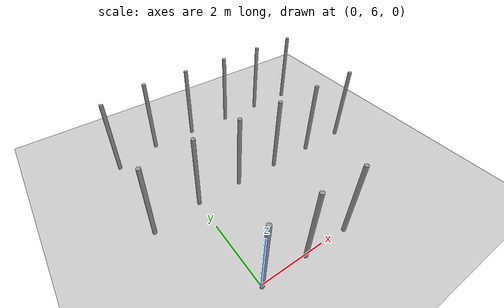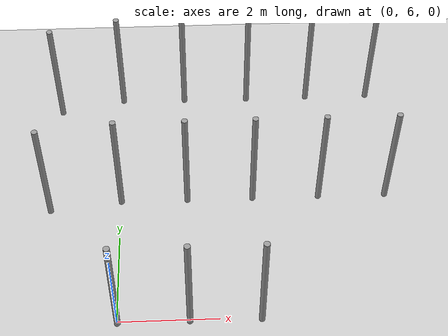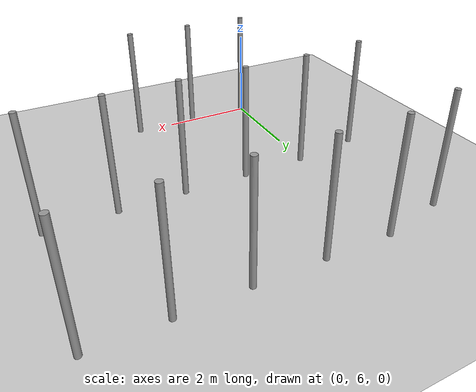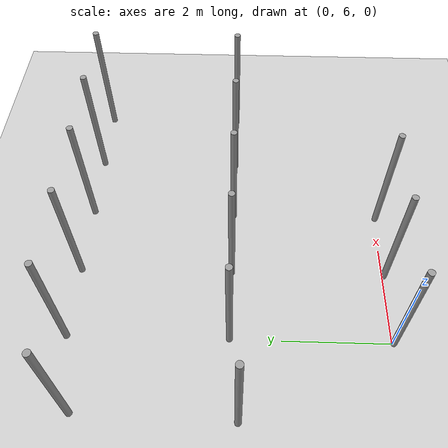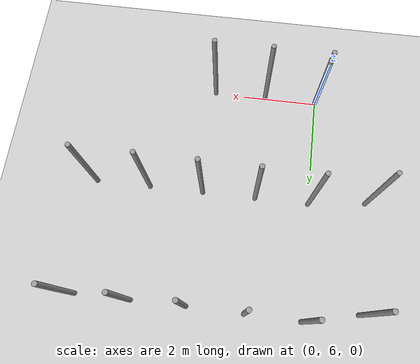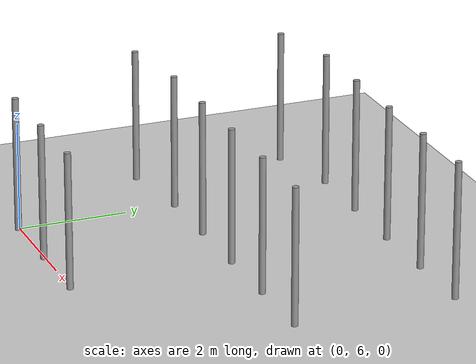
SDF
<sdf version="1.6">
 <world name="default">
  <model name="ground_plane">
   <static>1</static>
   <link name="link">
    <collision name="collision">
     <geometry><plane><normal>0 0 1</normal><size>100 100</size></plane></geometry>
     <surface><friction><ode><mu>100</mu><mu2>50</mu2></ode></friction></surface>
    </collision>
    <visual name="visual">
     <cast_shadows>0</cast_shadows>
     <geometry><plane><normal>0 0 1</normal><size>100 100</size></plane></geometry>
     <material>
      <script><uri>file://media/materials/scripts/gazebo.material</uri><name>Gazebo/Grey</name></script>
     </material>
    </visual>
   </link>
  </model>
  <model name="pole">
   <link name="link_0">
    <inertial>
     <mass>0.0364582</mass>
     <inertia>
      <ixx>0.00312124</ixx>
      <ixy>0</ixy>
      <ixz>0</ixz>
      <iyy>0.00312124</iyy>
      <iyz>0</iyz>
      <izz>0.00016615</izz>
     </inertia>
    </inertial>
    <visual name="visual">
     <geometry><cylinder><radius>0.06</radius><length>2.5</length></cylinder></geometry>
     <material>
      <lighting>1</lighting>
      <script><uri>file://media/materials/scripts/gazebo.material</uri><name>Gazebo/Grey</name></script>
      <ambient>0.3 0.3 0.3 1</ambient>
      <diffuse>0.7 0.7 0.7 1</diffuse>
      <specular>0.01 0.01 0.01 1</specular>
      <emissive>0 0 0 1</emissive>
      <shader type="vertex"><normal_map>__default__</normal_map></shader>
     </material>
    </visual>
    <collision name="collision">
     <geometry><cylinder><radius>0.06</radius><length>2.5</length></cylinder></geometry>
     <surface>
      <friction>
       <ode><mu>1</mu><mu2>1</mu2><fdir1>0 0 0</fdir1><slip1>0</slip1><slip2>0</slip2></ode>
       <torsional>
        <coefficient>1</coefficient>
        <patch_radius>0</patch_radius>
        <surface_radius>0</surface_radius>
        <use_patch_radius>1</use_patch_radius>
        <ode><slip>0</slip></ode>
       </torsional>
      </friction>
      <bounce><restitution_coefficient>0</restitution_coefficient><threshold>1e+06</threshold></bounce>
      <contact>
       <collide_without_contact>0</collide_without_contact>
       <collide_without_contact_bitmask>1</collide_without_contact_bitmask>
       <collide_bitmask>1</collide_bitmask>
       <ode>
        <soft_cfm>0</soft_cfm>
        <soft_erp>0.2</soft_erp>
        <kp>1e+13</kp>
        <kd>1</kd>
        <max_vel>0.01</max_vel>
        <min_depth>0</min_depth>
       </ode>
       <bullet>
        <split_impulse>1</split_impulse>
        <split_impulse_penetration_threshold>-0.01</split_impulse_penetration_threshold>
        <soft_cfm>0</soft_cfm>
        <soft_erp>0.2</soft_erp>
        <kp>1e+13</kp>
        <kd>1</kd>
       </bullet>
      </contact>
     </surface>
    </collision>
   </link>
   <static>0</static>
   <pose>0.007323 5.96573 1.25 0 0 -0.064661</pose>
  </model>
  <model name="pole_0">
   <link name="link_0">
    <inertial>
     <mass>0.0364582</mass>
     <inertia>
      <ixx>0.00312124</ixx>
      <ixy>0</ixy>
      <ixz>0</ixz>
      <iyy>0.00312124</iyy>
      <iyz>0</iyz>
      <izz>0.00016615</izz>
     </inertia>
    </inertial>
    <visual name="visual">
     <geometry><cylinder><radius>0.06</radius><length>2.5</length></cylinder></geometry>
     <material>
      <lighting>1</lighting>
      <script><uri>file://media/materials/scripts/gazebo.material</uri><name>Gazebo/Grey</name></script>
      <ambient>0.3 0.3 0.3 1</ambient>
      <diffuse>0.7 0.7 0.7 1</diffuse>
      <specular>0.01 0.01 0.01 1</specular>
      <emissive>0 0 0 1</emissive>
      <shader type="vertex"><normal_map>__default__</normal_map></shader>
     </material>
    </visual>
    <collision name="collision">
     <geometry><cylinder><radius>0.06</radius><length>2.5</length></cylinder></geometry>
     <surface>
      <friction>
       <ode><mu>1</mu><mu2>1</mu2><fdir1>0 0 0</fdir1><slip1>0</slip1><slip2>0</slip2></ode>
       <torsional>
        <coefficient>1</coefficient>
        <patch_radius>0</patch_radius>
        <surface_radius>0</surface_radius>
        <use_patch_radius>1</use_patch_radius>
        <ode><slip>0</slip></ode>
       </torsional>
      </friction>
      <bounce><restitution_coefficient>0</restitution_coefficient><threshold>1e+06</threshold></bounce>
      <contact>
       <collide_without_contact>0</collide_without_contact>
       <collide_without_contact_bitmask>1</collide_without_contact_bitmask>
       <collide_bitmask>1</collide_bitmask>
       <ode>
        <soft_cfm>0</soft_cfm>
        <soft_erp>0.2</soft_erp>
        <kp>1e+13</kp>
        <kd>1</kd>
        <max_vel>0.01</max_vel>
        <min_depth>0</min_depth>
       </ode>
       <bullet>
        <split_impulse>1</split_impulse>
        <split_impulse_penetration_threshold>-0.01</split_impulse_penetration_threshold>
        <soft_cfm>0</soft_cfm>
        <soft_erp>0.2</soft_erp>
        <kp>1e+13</kp>
        <kd>1</kd>
       </bullet>
      </contact>
     </surface>
    </collision>
   </link>
   <static>0</static>
   <pose>0.014095 8.94529 1.24999 -1e-06 1e-06 -0.063703</pose>
  </model>
  <model name="pole_1">
   <link name="link_0">
    <inertial>
     <mass>0.0364582</mass>
     <inertia>
      <ixx>0.00312124</ixx>
      <ixy>0</ixy>
      <ixz>0</ixz>
      <iyy>0.00312124</iyy>
      <iyz>0</iyz>
      <izz>0.00016615</izz>
     </inertia>
    </inertial>
    <visual name="visual">
     <geometry><cylinder><radius>0.06</radius><length>2.5</length></cylinder></geometry>
     <material>
      <lighting>1</lighting>
      <script><uri>file://media/materials/scripts/gazebo.material</uri><name>Gazebo/Grey</name></script>
      <ambient>0.3 0.3 0.3 1</ambient>
      <diffuse>0.7 0.7 0.7 1</diffuse>
      <specular>0.01 0.01 0.01 1</specular>
      <emissive>0 0 0 1</emissive>
      <shader type="vertex"><normal_map>__default__</normal_map></shader>
     </material>
    </visual>
    <collision name="collision">
     <geometry><cylinder><radius>0.06</radius><length>2.5</length></cylinder></geometry>
     <surface>
      <friction>
       <ode><mu>1</mu><mu2>1</mu2><fdir1>0 0 0</fdir1><slip1>0</slip1><slip2>0</slip2></ode>
       <torsional>
        <coefficient>1</coefficient>
        <patch_radius>0</patch_radius>
        <surface_radius>0</surface_radius>
        <use_patch_radius>1</use_patch_radius>
        <ode><slip>0</slip></ode>
       </torsional>
      </friction>
      <bounce><restitution_coefficient>0</restitution_coefficient><threshold>1e+06</threshold></bounce>
      <contact>
       <collide_without_contact>0</collide_without_contact>
       <collide_without_contact_bitmask>1</collide_without_contact_bitmask>
       <collide_bitmask>1</collide_bitmask>
       <ode>
        <soft_cfm>0</soft_cfm>
        <soft_erp>0.2</soft_erp>
        <kp>1e+13</kp>
        <kd>1</kd>
        <max_vel>0.01</max_vel>
        <min_depth>0</min_depth>
       </ode>
       <bullet>
        <split_impulse>1</split_impulse>
        <split_impulse_penetration_threshold>-0.01</split_impulse_penetration_threshold>
        <soft_cfm>0</soft_cfm>
        <soft_erp>0.2</soft_erp>
        <kp>1e+13</kp>
        <kd>1</kd>
       </bullet>
      </contact>
     </surface>
    </collision>
   </link>
   <static>0</static>
   <pose>-0.007473 11.9254 1.25 -1e-06 -1e-06 -0.068552</pose>
  </model>
  <model name="pole_12">
   <link name="link_0">
    <inertial>
     <mass>0.0364582</mass>
     <inertia>
      <ixx>0.00312124</ixx>
      <ixy>0</ixy>
      <ixz>0</ixz>
      <iyy>0.00312124</iyy>
      <iyz>0</iyz>
      <izz>0.00016615</izz>
     </inertia>
    </inertial>
    <visual name="visual">
     <geometry><cylinder><radius>0.06</radius><length>2.5</length></cylinder></geometry>
     <material>
      <lighting>1</lighting>
      <script><uri>file://media/materials/scripts/gazebo.material</uri><name>Gazebo/Grey</name></script>
      <ambient>0.3 0.3 0.3 1</ambient>
      <diffuse>0.7 0.7 0.7 1</diffuse>
      <specular>0.01 0.01 0.01 1</specular>
      <emissive>0 0 0 1</emissive>
      <shader type="vertex"><normal_map>__default__</normal_map></shader>
     </material>
    </visual>
    <collision name="collision">
     <geometry><cylinder><radius>0.06</radius><length>2.5</length></cylinder></geometry>
     <surface>
      <friction>
       <ode><mu>1</mu><mu2>1</mu2><fdir1>0 0 0</fdir1><slip1>0</slip1><slip2>0</slip2></ode>
       <torsional>
        <coefficient>1</coefficient>
        <patch_radius>0</patch_radius>
        <surface_radius>0</surface_radius>
        <use_patch_radius>1</use_patch_radius>
        <ode><slip>0</slip></ode>
       </torsional>
      </friction>
      <bounce><restitution_coefficient>0</restitution_coefficient><threshold>1e+06</threshold></bounce>
      <contact>
       <collide_without_contact>0</collide_without_contact>
       <collide_without_contact_bitmask>1</collide_without_contact_bitmask>
       <collide_bitmask>1</collide_bitmask>
       <ode>
        <soft_cfm>0</soft_cfm>
        <soft_erp>0.2</soft_erp>
        <kp>1e+13</kp>
        <kd>1</kd>
        <max_vel>0.01</max_vel>
        <min_depth>0</min_depth>
       </ode>
       <bullet>
        <split_impulse>1</split_impulse>
        <split_impulse_penetration_threshold>-0.01</split_impulse_penetration_threshold>
        <soft_cfm>0</soft_cfm>
        <soft_erp>0.2</soft_erp>
        <kp>1e+13</kp>
        <kd>1</kd>
       </bullet>
      </contact>
     </surface>
    </collision>
   </link>
   <static>0</static>
   <pose>1.41422 5.96533 1.25 -1e-06 1e-06 -0.057631</pose>
  </model>
  <model name="pole_13">
   <link name="link_0">
    <inertial>
     <mass>0.0364582</mass>
     <inertia>
      <ixx>0.00312124</ixx>
      <ixy>0</ixy>
      <ixz>0</ixz>
      <iyy>0.00312124</iyy>
      <iyz>0</iyz>
      <izz>0.00016615</izz>
     </inertia>
    </inertial>
    <visual name="visual">
     <geometry><cylinder><radius>0.06</radius><length>2.5</length></cylinder></geometry>
     <material>
      <lighting>1</lighting>
      <script><uri>file://media/materials/scripts/gazebo.material</uri><name>Gazebo/Grey</name></script>
      <ambient>0.3 0.3 0.3 1</ambient>
      <diffuse>0.7 0.7 0.7 1</diffuse>
      <specular>0.01 0.01 0.01 1</specular>
      <emissive>0 0 0 1</emissive>
      <shader type="vertex"><normal_map>__default__</normal_map></shader>
     </material>
    </visual>
    <collision name="collision">
     <geometry><cylinder><radius>0.06</radius><length>2.5</length></cylinder></geometry>
     <surface>
      <friction>
       <ode><mu>1</mu><mu2>1</mu2><fdir1>0 0 0</fdir1><slip1>0</slip1><slip2>0</slip2></ode>
       <torsional>
        <coefficient>1</coefficient>
        <patch_radius>0</patch_radius>
        <surface_radius>0</surface_radius>
        <use_patch_radius>1</use_patch_radius>
        <ode><slip>0</slip></ode>
       </torsional>
      </friction>
      <bounce><restitution_coefficient>0</restitution_coefficient><threshold>1e+06</threshold></bounce>
      <contact>
       <collide_without_contact>0</collide_without_contact>
       <collide_without_contact_bitmask>1</collide_without_contact_bitmask>
       <collide_bitmask>1</collide_bitmask>
       <ode>
        <soft_cfm>0</soft_cfm>
        <soft_erp>0.2</soft_erp>
        <kp>1e+13</kp>
        <kd>1</kd>
        <max_vel>0.01</max_vel>
        <min_depth>0</min_depth>
       </ode>
       <bullet>
        <split_impulse>1</split_impulse>
        <split_impulse_penetration_threshold>-0.01</split_impulse_penetration_threshold>
        <soft_cfm>0</soft_cfm>
        <soft_erp>0.2</soft_erp>
        <kp>1e+13</kp>
        <kd>1</kd>
       </bullet>
      </contact>
     </surface>
    </collision>
   </link>
   <static>0</static>
   <pose>2.80863 5.96537 1.24999 0 -1e-06 -0.058721</pose>
  </model>
  <model name="pole_16">
   <link name="link_0">
    <inertial>
     <mass>0.0364582</mass>
     <inertia>
      <ixx>0.00312124</ixx>
      <ixy>0</ixy>
      <ixz>0</ixz>
      <iyy>0.00312124</iyy>
      <iyz>0</iyz>
      <izz>0.00016615</izz>
     </inertia>
    </inertial>
    <visual name="visual">
     <geometry><cylinder><radius>0.06</radius><length>2.5</length></cylinder></geometry>
     <material>
      <lighting>1</lighting>
      <script><uri>file://media/materials/scripts/gazebo.material</uri><name>Gazebo/Grey</name></script>
      <ambient>0.3 0.3 0.3 1</ambient>
      <diffuse>0.7 0.7 0.7 1</diffuse>
      <specular>0.01 0.01 0.01 1</specular>
      <emissive>0 0 0 1</emissive>
      <shader type="vertex"><normal_map>__default__</normal_map></shader>
     </material>
    </visual>
    <collision name="collision">
     <geometry><cylinder><radius>0.06</radius><length>2.5</length></cylinder></geometry>
     <surface>
      <friction>
       <ode><mu>1</mu><mu2>1</mu2><fdir1>0 0 0</fdir1><slip1>0</slip1><slip2>0</slip2></ode>
       <torsional>
        <coefficient>1</coefficient>
        <patch_radius>0</patch_radius>
        <surface_radius>0</surface_radius>
        <use_patch_radius>1</use_patch_radius>
        <ode><slip>0</slip></ode>
       </torsional>
      </friction>
      <bounce><restitution_coefficient>0</restitution_coefficient><threshold>1e+06</threshold></bounce>
      <contact>
       <collide_without_contact>0</collide_without_contact>
       <collide_without_contact_bitmask>1</collide_without_contact_bitmask>
       <collide_bitmask>1</collide_bitmask>
       <ode>
        <soft_cfm>0</soft_cfm>
        <soft_erp>0.2</soft_erp>
        <kp>1e+13</kp>
        <kd>1</kd>
        <max_vel>0.01</max_vel>
        <min_depth>0</min_depth>
       </ode>
       <bullet>
        <split_impulse>1</split_impulse>
        <split_impulse_penetration_threshold>-0.01</split_impulse_penetration_threshold>
        <soft_cfm>0</soft_cfm>
        <soft_erp>0.2</soft_erp>
        <kp>1e+13</kp>
        <kd>1</kd>
       </bullet>
      </contact>
     </surface>
    </collision>
   </link>
   <static>0</static>
   <pose>1.41376 8.94515 1.24999 0 -4e-06 -0.061898</pose>
  </model>
  <model name="pole_17">
   <link name="link_0">
    <inertial>
     <mass>0.0364582</mass>
     <inertia>
      <ixx>0.00312124</ixx>
      <ixy>0</ixy>
      <ixz>0</ixz>
      <iyy>0.00312124</iyy>
      <iyz>0</iyz>
      <izz>0.00016615</izz>
     </inertia>
    </inertial>
    <visual name="visual">
     <geometry><cylinder><radius>0.06</radius><length>2.5</length></cylinder></geometry>
     <material>
      <lighting>1</lighting>
      <script><uri>file://media/materials/scripts/gazebo.material</uri><name>Gazebo/Grey</name></script>
      <ambient>0.3 0.3 0.3 1</ambient>
      <diffuse>0.7 0.7 0.7 1</diffuse>
      <specular>0.01 0.01 0.01 1</specular>
      <emissive>0 0 0 1</emissive>
      <shader type="vertex"><normal_map>__default__</normal_map></shader>
     </material>
    </visual>
    <collision name="collision">
     <geometry><cylinder><radius>0.06</radius><length>2.5</length></cylinder></geometry>
     <surface>
      <friction>
       <ode><mu>1</mu><mu2>1</mu2><fdir1>0 0 0</fdir1><slip1>0</slip1><slip2>0</slip2></ode>
       <torsional>
        <coefficient>1</coefficient>
        <patch_radius>0</patch_radius>
        <surface_radius>0</surface_radius>
        <use_patch_radius>1</use_patch_radius>
        <ode><slip>0</slip></ode>
       </torsional>
      </friction>
      <bounce><restitution_coefficient>0</restitution_coefficient><threshold>1e+06</threshold></bounce>
      <contact>
       <collide_without_contact>0</collide_without_contact>
       <collide_without_contact_bitmask>1</collide_without_contact_bitmask>
       <collide_bitmask>1</collide_bitmask>
       <ode>
        <soft_cfm>0</soft_cfm>
        <soft_erp>0.2</soft_erp>
        <kp>1e+13</kp>
        <kd>1</kd>
        <max_vel>0.01</max_vel>
        <min_depth>0</min_depth>
       </ode>
       <bullet>
        <split_impulse>1</split_impulse>
        <split_impulse_penetration_threshold>-0.01</split_impulse_penetration_threshold>
        <soft_cfm>0</soft_cfm>
        <soft_erp>0.2</soft_erp>
        <kp>1e+13</kp>
        <kd>1</kd>
       </bullet>
      </contact>
     </surface>
    </collision>
   </link>
   <static>0</static>
   <pose>2.8005 8.94494 1.24999 0 1e-06 -0.05794</pose>
  </model>
  <model name="pole_18">
   <link name="link_0">
    <inertial>
     <mass>0.0364582</mass>
     <inertia>
      <ixx>0.00312124</ixx>
      <ixy>0</ixy>
      <ixz>0</ixz>
      <iyy>0.00312124</iyy>
      <iyz>0</iyz>
      <izz>0.00016615</izz>
     </inertia>
    </inertial>
    <visual name="visual">
     <geometry><cylinder><radius>0.06</radius><length>2.5</length></cylinder></geometry>
     <material>
      <lighting>1</lighting>
      <script><uri>file://media/materials/scripts/gazebo.material</uri><name>Gazebo/Grey</name></script>
      <ambient>0.3 0.3 0.3 1</ambient>
      <diffuse>0.7 0.7 0.7 1</diffuse>
      <specular>0.01 0.01 0.01 1</specular>
      <emissive>0 0 0 1</emissive>
      <shader type="vertex"><normal_map>__default__</normal_map></shader>
     </material>
    </visual>
    <collision name="collision">
     <geometry><cylinder><radius>0.06</radius><length>2.5</length></cylinder></geometry>
     <surface>
      <friction>
       <ode><mu>1</mu><mu2>1</mu2><fdir1>0 0 0</fdir1><slip1>0</slip1><slip2>0</slip2></ode>
       <torsional>
        <coefficient>1</coefficient>
        <patch_radius>0</patch_radius>
        <surface_radius>0</surface_radius>
        <use_patch_radius>1</use_patch_radius>
        <ode><slip>0</slip></ode>
       </torsional>
      </friction>
      <bounce><restitution_coefficient>0</restitution_coefficient><threshold>1e+06</threshold></bounce>
      <contact>
       <collide_without_contact>0</collide_without_contact>
       <collide_without_contact_bitmask>1</collide_without_contact_bitmask>
       <collide_bitmask>1</collide_bitmask>
       <ode>
        <soft_cfm>0</soft_cfm>
        <soft_erp>0.2</soft_erp>
        <kp>1e+13</kp>
        <kd>1</kd>
        <max_vel>0.01</max_vel>
        <min_depth>0</min_depth>
       </ode>
       <bullet>
        <split_impulse>1</split_impulse>
        <split_impulse_penetration_threshold>-0.01</split_impulse_penetration_threshold>
        <soft_cfm>0</soft_cfm>
        <soft_erp>0.2</soft_erp>
        <kp>1e+13</kp>
        <kd>1</kd>
       </bullet>
      </contact>
     </surface>
    </collision>
   </link>
   <static>0</static>
   <pose>4.20446 8.94504 1.25 -1e-06 1e-06 -0.052486</pose>
  </model>
  <model name="pole_19">
   <link name="link_0">
    <inertial>
     <mass>0.0364582</mass>
     <inertia>
      <ixx>0.00312124</ixx>
      <ixy>0</ixy>
      <ixz>0</ixz>
      <iyy>0.00312124</iyy>
      <iyz>0</iyz>
      <izz>0.00016615</izz>
     </inertia>
    </inertial>
    <visual name="visual">
     <geometry><cylinder><radius>0.06</radius><length>2.5</length></cylinder></geometry>
     <material>
      <lighting>1</lighting>
      <script><uri>file://media/materials/scripts/gazebo.material</uri><name>Gazebo/Grey</name></script>
      <ambient>0.3 0.3 0.3 1</ambient>
      <diffuse>0.7 0.7 0.7 1</diffuse>
      <specular>0.01 0.01 0.01 1</specular>
      <emissive>0 0 0 1</emissive>
      <shader type="vertex"><normal_map>__default__</normal_map></shader>
     </material>
    </visual>
    <collision name="collision">
     <geometry><cylinder><radius>0.06</radius><length>2.5</length></cylinder></geometry>
     <surface>
      <friction>
       <ode><mu>1</mu><mu2>1</mu2><fdir1>0 0 0</fdir1><slip1>0</slip1><slip2>0</slip2></ode>
       <torsional>
        <coefficient>1</coefficient>
        <patch_radius>0</patch_radius>
        <surface_radius>0</surface_radius>
        <use_patch_radius>1</use_patch_radius>
        <ode><slip>0</slip></ode>
       </torsional>
      </friction>
      <bounce><restitution_coefficient>0</restitution_coefficient><threshold>1e+06</threshold></bounce>
      <contact>
       <collide_without_contact>0</collide_without_contact>
       <collide_without_contact_bitmask>1</collide_without_contact_bitmask>
       <collide_bitmask>1</collide_bitmask>
       <ode>
        <soft_cfm>0</soft_cfm>
        <soft_erp>0.2</soft_erp>
        <kp>1e+13</kp>
        <kd>1</kd>
        <max_vel>0.01</max_vel>
        <min_depth>0</min_depth>
       </ode>
       <bullet>
        <split_impulse>1</split_impulse>
        <split_impulse_penetration_threshold>-0.01</split_impulse_penetration_threshold>
        <soft_cfm>0</soft_cfm>
        <soft_erp>0.2</soft_erp>
        <kp>1e+13</kp>
        <kd>1</kd>
       </bullet>
      </contact>
     </surface>
    </collision>
   </link>
   <static>0</static>
   <pose>5.62998 8.94502 1.25 -1e-06 -0 -0.056694</pose>
  </model>
  <model name="pole_20">
   <link name="link_0">
    <inertial>
     <mass>0.0364582</mass>
     <inertia>
      <ixx>0.00312124</ixx>
      <ixy>0</ixy>
      <ixz>0</ixz>
      <iyy>0.00312124</iyy>
      <iyz>0</iyz>
      <izz>0.00016615</izz>
     </inertia>
    </inertial>
    <visual name="visual">
     <geometry><cylinder><radius>0.06</radius><length>2.5</length></cylinder></geometry>
     <material>
      <lighting>1</lighting>
      <script><uri>file://media/materials/scripts/gazebo.material</uri><name>Gazebo/Grey</name></script>
      <ambient>0.3 0.3 0.3 1</ambient>
      <diffuse>0.7 0.7 0.7 1</diffuse>
      <specular>0.01 0.01 0.01 1</specular>
      <emissive>0 0 0 1</emissive>
      <shader type="vertex"><normal_map>__default__</normal_map></shader>
     </material>
    </visual>
    <collision name="collision">
     <geometry><cylinder><radius>0.06</radius><length>2.5</length></cylinder></geometry>
     <surface>
      <friction>
       <ode><mu>1</mu><mu2>1</mu2><fdir1>0 0 0</fdir1><slip1>0</slip1><slip2>0</slip2></ode>
       <torsional>
        <coefficient>1</coefficient>
        <patch_radius>0</patch_radius>
        <surface_radius>0</surface_radius>
        <use_patch_radius>1</use_patch_radius>
        <ode><slip>0</slip></ode>
       </torsional>
      </friction>
      <bounce><restitution_coefficient>0</restitution_coefficient><threshold>1e+06</threshold></bounce>
      <contact>
       <collide_without_contact>0</collide_without_contact>
       <collide_without_contact_bitmask>1</collide_without_contact_bitmask>
       <collide_bitmask>1</collide_bitmask>
       <ode>
        <soft_cfm>0</soft_cfm>
        <soft_erp>0.2</soft_erp>
        <kp>1e+13</kp>
        <kd>1</kd>
        <max_vel>0.01</max_vel>
        <min_depth>0</min_depth>
       </ode>
       <bullet>
        <split_impulse>1</split_impulse>
        <split_impulse_penetration_threshold>-0.01</split_impulse_penetration_threshold>
        <soft_cfm>0</soft_cfm>
        <soft_erp>0.2</soft_erp>
        <kp>1e+13</kp>
        <kd>1</kd>
       </bullet>
      </contact>
     </surface>
    </collision>
   </link>
   <static>0</static>
   <pose>1.39639 11.9048 1.25 -1e-06 -1e-06 -0.0518</pose>
  </model>
  <model name="pole_21">
   <link name="link_0">
    <inertial>
     <mass>0.0364582</mass>
     <inertia>
      <ixx>0.00312124</ixx>
      <ixy>0</ixy>
      <ixz>0</ixz>
      <iyy>0.00312124</iyy>
      <iyz>0</iyz>
      <izz>0.00016615</izz>
     </inertia>
    </inertial>
    <visual name="visual">
     <geometry><cylinder><radius>0.06</radius><length>2.5</length></cylinder></geometry>
     <material>
      <lighting>1</lighting>
      <script><uri>file://media/materials/scripts/gazebo.material</uri><name>Gazebo/Grey</name></script>
      <ambient>0.3 0.3 0.3 1</ambient>
      <diffuse>0.7 0.7 0.7 1</diffuse>
      <specular>0.01 0.01 0.01 1</specular>
      <emissive>0 0 0 1</emissive>
      <shader type="vertex"><normal_map>__default__</normal_map></shader>
     </material>
    </visual>
    <collision name="collision">
     <geometry><cylinder><radius>0.06</radius><length>2.5</length></cylinder></geometry>
     <surface>
      <friction>
       <ode><mu>1</mu><mu2>1</mu2><fdir1>0 0 0</fdir1><slip1>0</slip1><slip2>0</slip2></ode>
       <torsional>
        <coefficient>1</coefficient>
        <patch_radius>0</patch_radius>
        <surface_radius>0</surface_radius>
        <use_patch_radius>1</use_patch_radius>
        <ode><slip>0</slip></ode>
       </torsional>
      </friction>
      <bounce><restitution_coefficient>0</restitution_coefficient><threshold>1e+06</threshold></bounce>
      <contact>
       <collide_without_contact>0</collide_without_contact>
       <collide_without_contact_bitmask>1</collide_without_contact_bitmask>
       <collide_bitmask>1</collide_bitmask>
       <ode>
        <soft_cfm>0</soft_cfm>
        <soft_erp>0.2</soft_erp>
        <kp>1e+13</kp>
        <kd>1</kd>
        <max_vel>0.01</max_vel>
        <min_depth>0</min_depth>
       </ode>
       <bullet>
        <split_impulse>1</split_impulse>
        <split_impulse_penetration_threshold>-0.01</split_impulse_penetration_threshold>
        <soft_cfm>0</soft_cfm>
        <soft_erp>0.2</soft_erp>
        <kp>1e+13</kp>
        <kd>1</kd>
       </bullet>
      </contact>
     </surface>
    </collision>
   </link>
   <static>0</static>
   <pose>2.83099 11.8918 1.24999 -1e-06 -1e-06 0.4122</pose>
  </model>
  <model name="pole_22">
   <link name="link_0">
    <inertial>
     <mass>0.0364582</mass>
     <inertia>
      <ixx>0.00312124</ixx>
      <ixy>0</ixy>
      <ixz>0</ixz>
      <iyy>0.00312124</iyy>
      <iyz>0</iyz>
      <izz>0.00016615</izz>
     </inertia>
    </inertial>
    <visual name="visual">
     <geometry><cylinder><radius>0.06</radius><length>2.5</length></cylinder></geometry>
     <material>
      <lighting>1</lighting>
      <script><uri>file://media/materials/scripts/gazebo.material</uri><name>Gazebo/Grey</name></script>
      <ambient>0.3 0.3 0.3 1</ambient>
      <diffuse>0.7 0.7 0.7 1</diffuse>
      <specular>0.01 0.01 0.01 1</specular>
      <emissive>0 0 0 1</emissive>
      <shader type="vertex"><normal_map>__default__</normal_map></shader>
     </material>
    </visual>
    <collision name="collision">
     <geometry><cylinder><radius>0.06</radius><length>2.5</length></cylinder></geometry>
     <surface>
      <friction>
       <ode><mu>1</mu><mu2>1</mu2><fdir1>0 0 0</fdir1><slip1>0</slip1><slip2>0</slip2></ode>
       <torsional>
        <coefficient>1</coefficient>
        <patch_radius>0</patch_radius>
        <surface_radius>0</surface_radius>
        <use_patch_radius>1</use_patch_radius>
        <ode><slip>0</slip></ode>
       </torsional>
      </friction>
      <bounce><restitution_coefficient>0</restitution_coefficient><threshold>1e+06</threshold></bounce>
      <contact>
       <collide_without_contact>0</collide_without_contact>
       <collide_without_contact_bitmask>1</collide_without_contact_bitmask>
       <collide_bitmask>1</collide_bitmask>
       <ode>
        <soft_cfm>0</soft_cfm>
        <soft_erp>0.2</soft_erp>
        <kp>1e+13</kp>
        <kd>1</kd>
        <max_vel>0.01</max_vel>
        <min_depth>0</min_depth>
       </ode>
       <bullet>
        <split_impulse>1</split_impulse>
        <split_impulse_penetration_threshold>-0.01</split_impulse_penetration_threshold>
        <soft_cfm>0</soft_cfm>
        <soft_erp>0.2</soft_erp>
        <kp>1e+13</kp>
        <kd>1</kd>
       </bullet>
      </contact>
     </surface>
    </collision>
   </link>
   <static>0</static>
   <pose>4.21269 11.9046 1.25 -1e-06 -1e-06 -0.051004</pose>
  </model>
  <model name="pole_23">
   <link name="link_0">
    <inertial>
     <mass>0.0364582</mass>
     <inertia>
      <ixx>0.00312124</ixx>
      <ixy>0</ixy>
      <ixz>0</ixz>
      <iyy>0.00312124</iyy>
      <iyz>0</iyz>
      <izz>0.00016615</izz>
     </inertia>
    </inertial>
    <visual name="visual">
     <geometry><cylinder><radius>0.06</radius><length>2.5</length></cylinder></geometry>
     <material>
      <lighting>1</lighting>
      <script><uri>file://media/materials/scripts/gazebo.material</uri><name>Gazebo/Grey</name></script>
      <ambient>0.3 0.3 0.3 1</ambient>
      <diffuse>0.7 0.7 0.7 1</diffuse>
      <specular>0.01 0.01 0.01 1</specular>
      <emissive>0 0 0 1</emissive>
      <shader type="vertex"><normal_map>__default__</normal_map></shader>
     </material>
    </visual>
    <collision name="collision">
     <geometry><cylinder><radius>0.06</radius><length>2.5</length></cylinder></geometry>
     <surface>
      <friction>
       <ode><mu>1</mu><mu2>1</mu2><fdir1>0 0 0</fdir1><slip1>0</slip1><slip2>0</slip2></ode>
       <torsional>
        <coefficient>1</coefficient>
        <patch_radius>0</patch_radius>
        <surface_radius>0</surface_radius>
        <use_patch_radius>1</use_patch_radius>
        <ode><slip>0</slip></ode>
       </torsional>
      </friction>
      <bounce><restitution_coefficient>0</restitution_coefficient><threshold>1e+06</threshold></bounce>
      <contact>
       <collide_without_contact>0</collide_without_contact>
       <collide_without_contact_bitmask>1</collide_without_contact_bitmask>
       <collide_bitmask>1</collide_bitmask>
       <ode>
        <soft_cfm>0</soft_cfm>
        <soft_erp>0.2</soft_erp>
        <kp>1e+13</kp>
        <kd>1</kd>
        <max_vel>0.01</max_vel>
        <min_depth>0</min_depth>
       </ode>
       <bullet>
        <split_impulse>1</split_impulse>
        <split_impulse_penetration_threshold>-0.01</split_impulse_penetration_threshold>
        <soft_cfm>0</soft_cfm>
        <soft_erp>0.2</soft_erp>
        <kp>1e+13</kp>
        <kd>1</kd>
       </bullet>
      </contact>
     </surface>
    </collision>
   </link>
   <static>0</static>
   <pose>5.61671 11.9049 1.24999 -0 -1e-06 -0.053268</pose>
  </model>
  <model name="pole_2_clone_2">
   <link name="link_0">
    <inertial>
     <mass>0.0364582</mass>
     <inertia>
      <ixx>0.00312124</ixx>
      <ixy>0</ixy>
      <ixz>0</ixz>
      <iyy>0.00312124</iyy>
      <iyz>0</iyz>
      <izz>0.00016615</izz>
     </inertia>
    </inertial>
    <visual name="visual">
     <geometry><cylinder><radius>0.06</radius><length>2.5</length></cylinder></geometry>
     <material>
      <lighting>1</lighting>
      <script><uri>file://media/materials/scripts/gazebo.material</uri><name>Gazebo/Grey</name></script>
      <ambient>0.3 0.3 0.3 1</ambient>
      <diffuse>0.7 0.7 0.7 1</diffuse>
      <specular>0.01 0.01 0.01 1</specular>
      <emissive>0 0 0 1</emissive>
      <shader type="vertex"><normal_map>__default__</normal_map></shader>
     </material>
    </visual>
    <collision name="collision">
     <geometry><cylinder><radius>0.06</radius><length>2.5</length></cylinder></geometry>
     <surface>
      <friction>
       <ode><mu>1</mu><mu2>1</mu2><fdir1>0 0 0</fdir1><slip1>0</slip1><slip2>0</slip2></ode>
       <torsional>
        <coefficient>1</coefficient>
        <patch_radius>0</patch_radius>
        <surface_radius>0</surface_radius>
        <use_patch_radius>1</use_patch_radius>
        <ode><slip>0</slip></ode>
       </torsional>
      </friction>
      <bounce><restitution_coefficient>0</restitution_coefficient><threshold>1e+06</threshold></bounce>
      <contact>
       <collide_without_contact>0</collide_without_contact>
       <collide_without_contact_bitmask>1</collide_without_contact_bitmask>
       <collide_bitmask>1</collide_bitmask>
       <ode>
        <soft_cfm>0</soft_cfm>
        <soft_erp>0.2</soft_erp>
        <kp>1e+13</kp>
        <kd>1</kd>
        <max_vel>0.01</max_vel>
        <min_depth>0</min_depth>
       </ode>
       <bullet>
        <split_impulse>1</split_impulse>
        <split_impulse_penetration_threshold>-0.01</split_impulse_penetration_threshold>
        <soft_cfm>0</soft_cfm>
        <soft_erp>0.2</soft_erp>
        <kp>1e+13</kp>
        <kd>1</kd>
       </bullet>
      </contact>
     </surface>
    </collision>
   </link>
   <static>0</static>
   <pose>-1.47713 8.75682 1.24999 -1e-06 1e-06 -0.005606</pose>
  </model>
  <model name="pole_2_clone_3">
   <link name="link_0">
    <inertial>
     <mass>0.0364582</mass>
     <inertia>
      <ixx>0.00312124</ixx>
      <ixy>0</ixy>
      <ixz>0</ixz>
      <iyy>0.00312124</iyy>
      <iyz>0</iyz>
      <izz>0.00016615</izz>
     </inertia>
    </inertial>
    <visual name="visual">
     <geometry><cylinder><radius>0.06</radius><length>2.5</length></cylinder></geometry>
     <material>
      <lighting>1</lighting>
      <script><uri>file://media/materials/scripts/gazebo.material</uri><name>Gazebo/Grey</name></script>
      <ambient>0.3 0.3 0.3 1</ambient>
      <diffuse>0.7 0.7 0.7 1</diffuse>
      <specular>0.01 0.01 0.01 1</specular>
      <emissive>0 0 0 1</emissive>
      <shader type="vertex"><normal_map>__default__</normal_map></shader>
     </material>
    </visual>
    <collision name="collision">
     <geometry><cylinder><radius>0.06</radius><length>2.5</length></cylinder></geometry>
     <surface>
      <friction>
       <ode><mu>1</mu><mu2>1</mu2><fdir1>0 0 0</fdir1><slip1>0</slip1><slip2>0</slip2></ode>
       <torsional>
        <coefficient>1</coefficient>
        <patch_radius>0</patch_radius>
        <surface_radius>0</surface_radius>
        <use_patch_radius>1</use_patch_radius>
        <ode><slip>0</slip></ode>
       </torsional>
      </friction>
      <bounce><restitution_coefficient>0</restitution_coefficient><threshold>1e+06</threshold></bounce>
      <contact>
       <collide_without_contact>0</collide_without_contact>
       <collide_without_contact_bitmask>1</collide_without_contact_bitmask>
       <collide_bitmask>1</collide_bitmask>
       <ode>
        <soft_cfm>0</soft_cfm>
        <soft_erp>0.2</soft_erp>
        <kp>1e+13</kp>
        <kd>1</kd>
        <max_vel>0.01</max_vel>
        <min_depth>0</min_depth>
       </ode>
       <bullet>
        <split_impulse>1</split_impulse>
        <split_impulse_penetration_threshold>-0.01</split_impulse_penetration_threshold>
        <soft_cfm>0</soft_cfm>
        <soft_erp>0.2</soft_erp>
        <kp>1e+13</kp>
        <kd>1</kd>
       </bullet>
      </contact>
     </surface>
    </collision>
   </link>
   <static>0</static>
   <pose>-1.39942 11.6041 1.25 0 -1e-06 -0.000363</pose>
  </model>
 </world>
</sdf>
